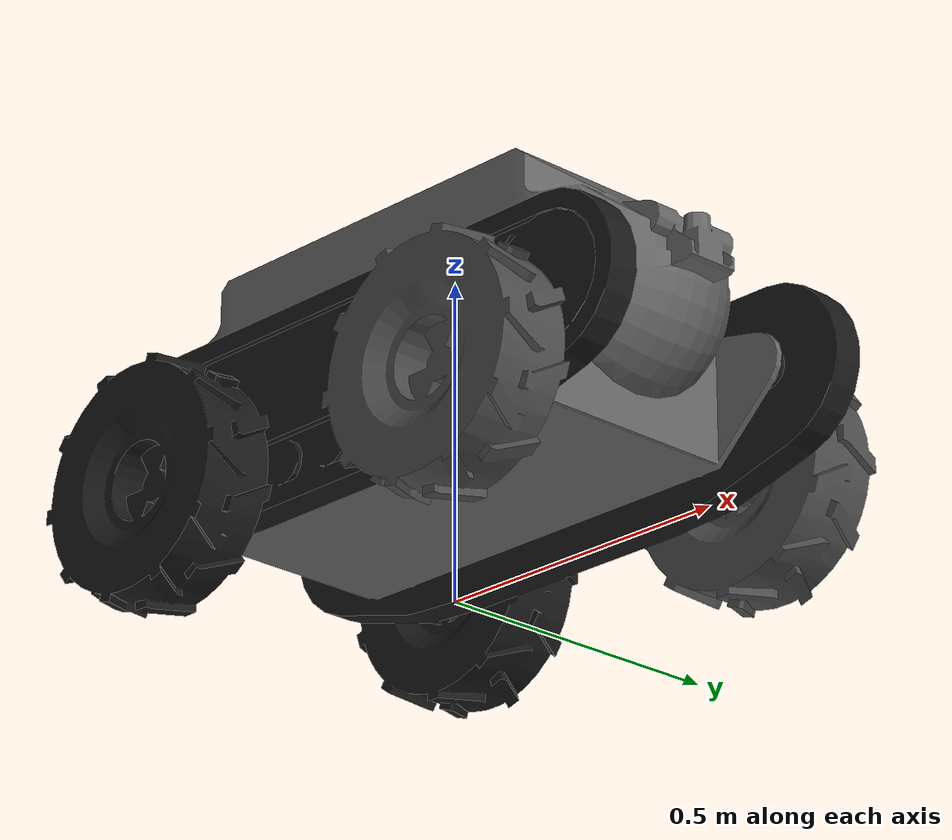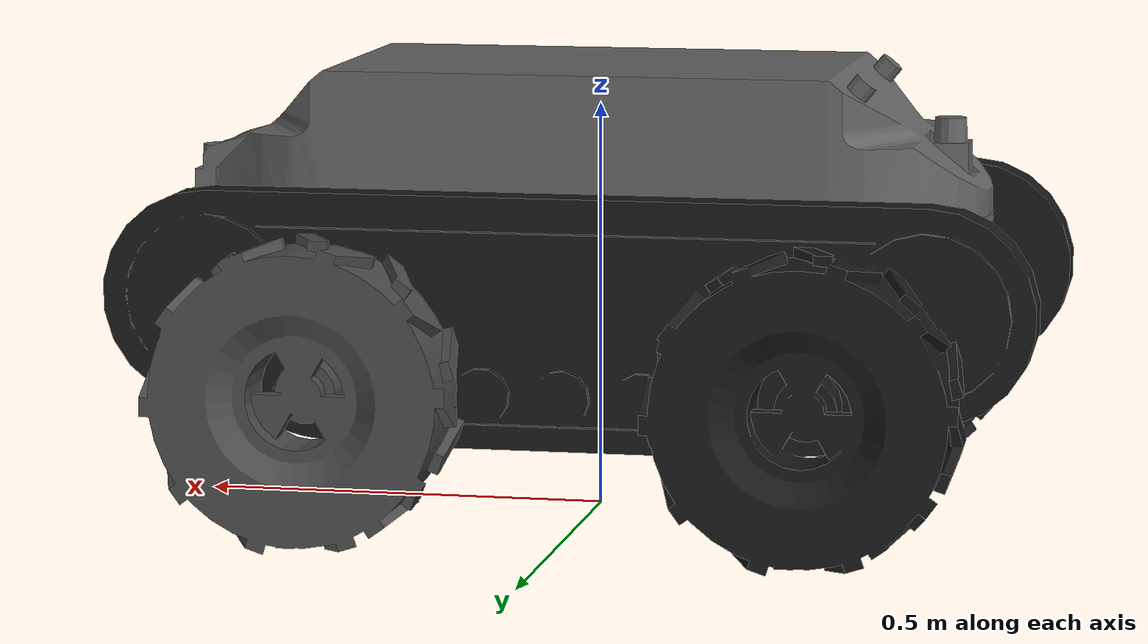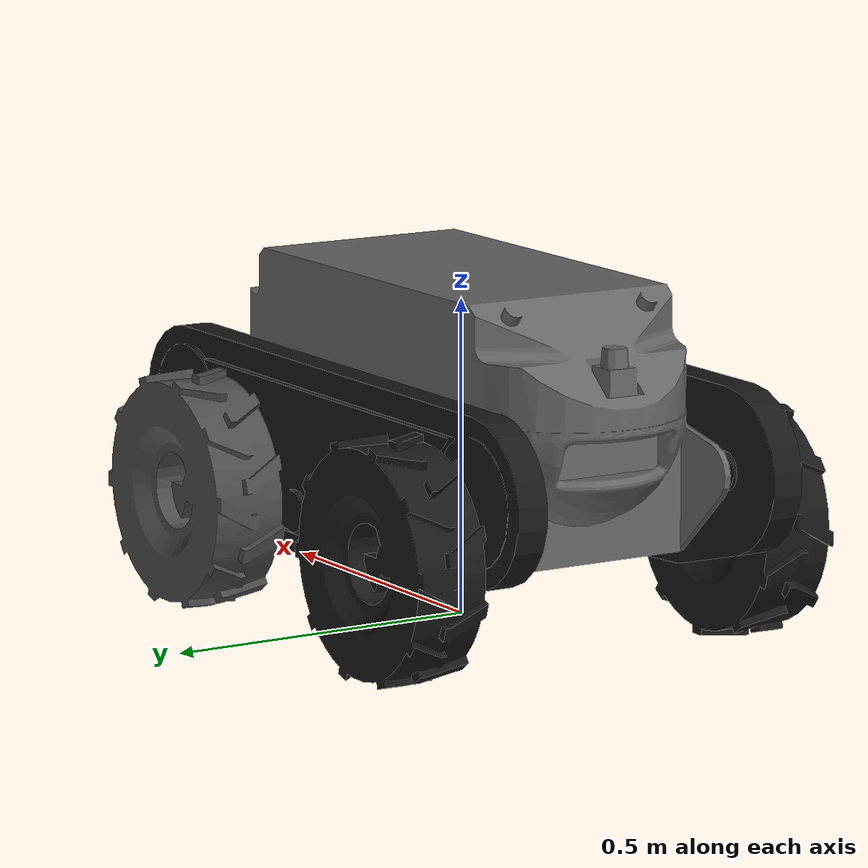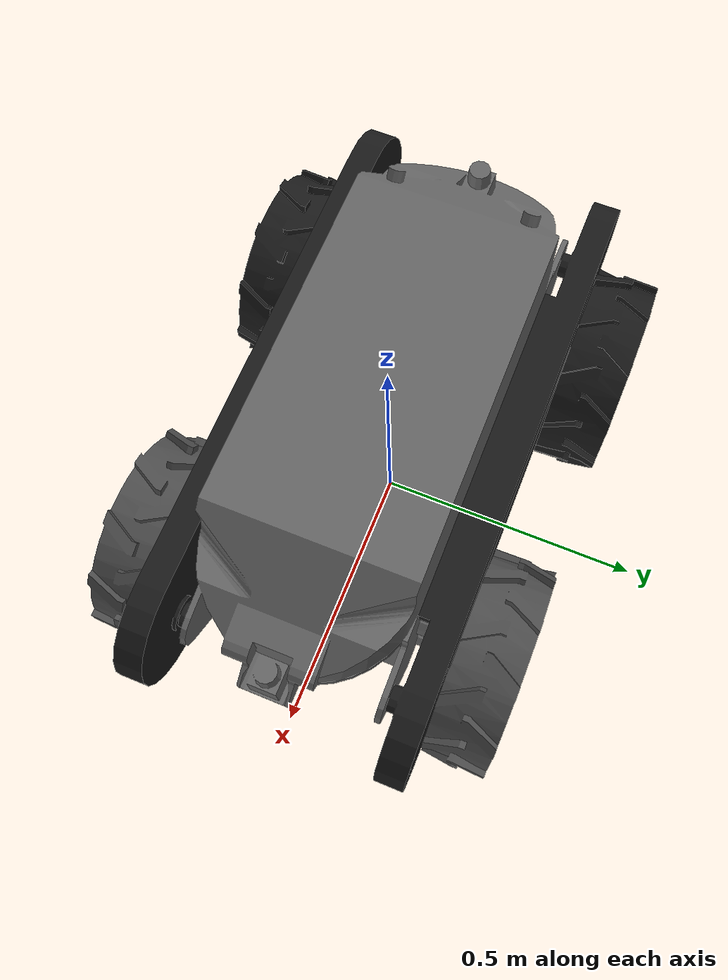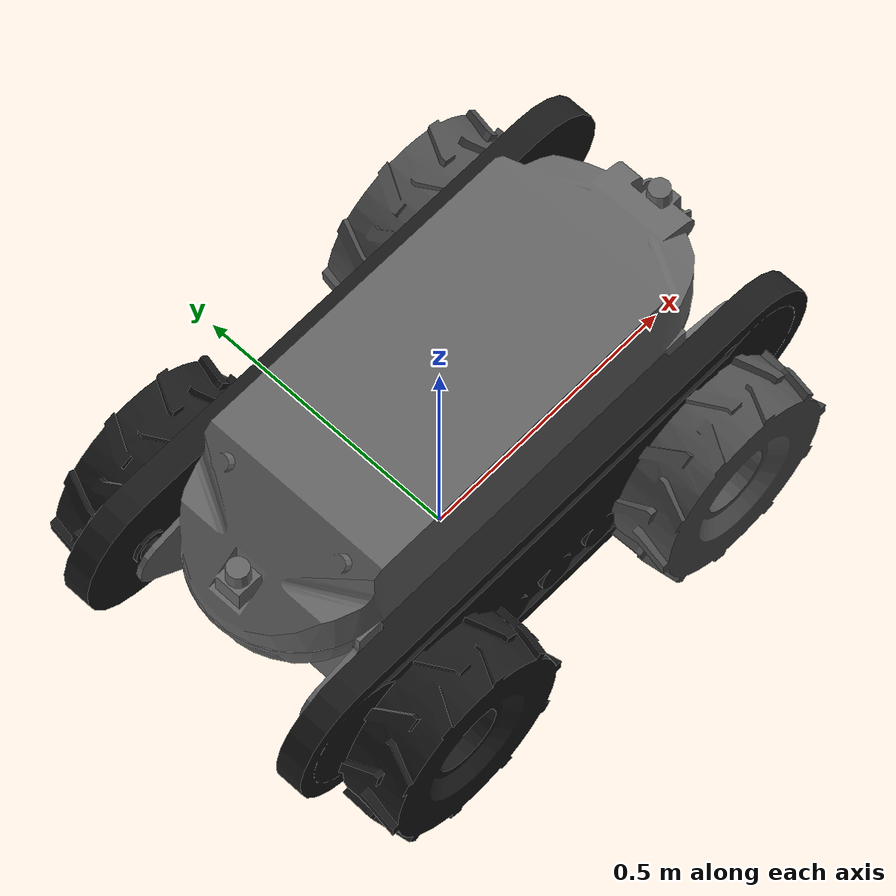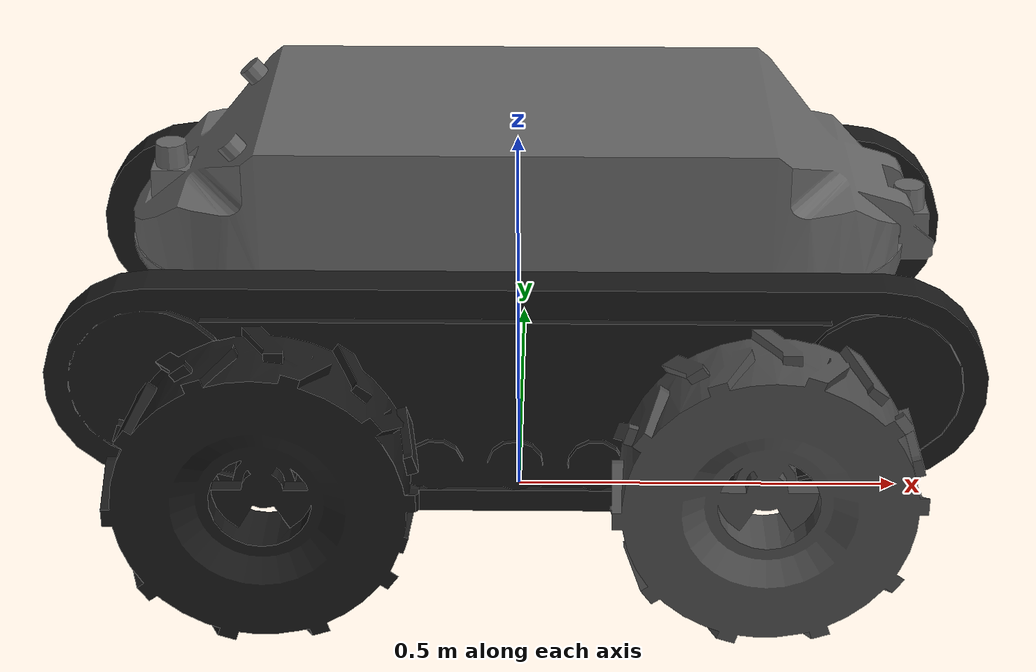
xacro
<?xml version="1.0"?>
<robot name="gball" xmlns:xacro="http://www.ros.org/wiki/xacro">

  <!-- Import all Gazebo-customization elements, including Gazebo colors -->
  <xacro:include filename="$(find guardian_description)/urdf/guardian.gazebo" />

  <!-- Robot mechanical and motor parameters -->
  <xacro:property name="PI" value="3.1415926535897931"/>
  <xacro:property name="wheel_offset_x" value="0.300" />    <!-- x,y,z in base_footprint CS -->
  <xacro:property name="wheel_offset_y" value="0.265" />
  <xacro:property name="wheel_offset_z" value="0.0" />
  <xacro:property name="wheel_joint_damping" value="0.0" />
  <xacro:property name="wheel_joint_friction" value="0.0" />

  <xacro:property name="wheel_joint_effort_limit" value="200.0" />
  <xacro:property name="wheel_joint_velocity_limit" value="200.0" />
  <xacro:property name="wheel_mechanical_reduction" value="1.0" />

  <xacro:property name="ptz_joint_effort_limit" value="100.0" />
  <xacro:property name="ptz_joint_velocity_limit" value="100.0"/>
  <xacro:property name="ptz_joint_friction" value="0.1" />
  <xacro:property name="ptz_joint_damping" value="0.1" />
  <xacro:property name="ptz_mechanical_reduction" value="1.0" />

  <xacro:property name="simple_wheel_length" value="0.115" />
  <xacro:property name="simple_wheel_radius" value="0.185" />
  <xacro:property name="wheel_origin_y" value="0.0415" />
  <xacro:property name="wheel_offset_y_a" value="0.306" />

  <!-- Used for fixing robot to Gazebo 'base_link' -->

  <!-- BASE FOOTPRINT -->
  <!-- base_footprint is a fictitious link(frame) that is on the ground right below base_link origin,
             navigation stack depends on this frame -->
  <link name="base_footprint">
      <visual>
          <origin xyz="0 0 0" rpy="0 0 0" />
          <geometry>
             <box size="0.001 0.001 0.001" />
          </geometry>
      </visual>

  </link>

  <joint name="base_footprint_joint" type="fixed">
     <!--NB: While you would think this would make it go up, it is oddly reversed.
      This moves the joint to 0,0,0 where we want it for rviz, etc. -->
     <!-- origin xyz="0 0 0.130" rpy="0 0 0" / -->
     <origin xyz="0 0 0.18" rpy="0 0 0" />
     <parent link="base_footprint"/>
     <child link="base_link" />
  </joint>

  <!-- BASE_LINK (DarkGrey) -->
  <link name="base_link">
    <inertial>
      <mass value="33.50" />
      <origin xyz="0 0 0" />
      <inertia  ixx="3.737" ixy="0.008"  ixz="-0.144"  iyy="8.311"  iyz="-0.004"  izz="8.893" />
    </inertial>
    <visual>
       <origin xyz="0 0 0" rpy="0 0 0" />
       <geometry>
	     <mesh filename="package://guardian_description/meshes/chassis/two_lasers/guardian2lasers.stl"/>
       </geometry>
		<material name="DarkGrey">
			<color rgba="0.4 0.4 0.4 1.0" />
		</material>
    </visual>
    <collision>
       <origin xyz="0 0 0.08" rpy="0 0 0 " />
       <geometry>
		  <!-- includes tracks, making it just tall enough not to hit the laser beams -->
		  <box size = "1.127 0.497 0.25"/>
       </geometry>
    </collision>
  </link>

<!-- ################# TRACKS ################# -->
  <!-- RIGHT TRACK (BLACK) -->
  <link name="right_track">
    <inertial>
      <mass value="1.250" />
      <origin xyz="0 0 0" />
      <inertia  ixx="0.0109375" ixy="0.0"  ixz="0.0"  iyy="0.021125"  iyz="0.0"  izz="0.0109375" />
    </inertial>
    <visual>
      <origin xyz="0 0 0" rpy="0 0 0" />
      <geometry>
	 	 <mesh filename="package://guardian_description/meshes/others/v5/trackV5_l.stl"/>
      </geometry>
	  <material name="black">
  		 <color rgba="0.1 0.1 0.1 1"/>
      </material>
    </visual>
  </link>

  <joint name="joint_right_track" type="fixed">
    <parent link="base_link"/>
    <child link="right_track"/>
    <origin xyz="0.0 0.0 0.0" rpy="0 0 0" />
  </joint>

  <!-- LEFT TRACK (BLACK) -->
  <link name="left_track">
    <inertial>
      <mass value="1.250" />
      <origin xyz="0 0 0" />
      <inertia  ixx="0.0109375" ixy="0.0"  ixz="0.0"  iyy="0.021125"  iyz="0.0"  izz="0.0109375" />
    </inertial>
    <visual>
       <origin xyz="0 0 0" rpy="0 0 0" />
       <geometry>
	 	  <mesh filename="package://guardian_description/meshes/others/v5/trackV5_l.stl"/>
       </geometry>
	   <material name="black"/>
    </visual>
  </link>

  <joint name="joint_left_track" type="fixed">
    <parent link="base_link"/>
    <child link="left_track"/>
    <origin xyz="0.0 0.0 0.0" rpy="0 0 3.1415926535" />
  </joint>

<!-- ################# WHEELS ################# -->
  <!-- BACK LEFT WHEEL (GREY) -->
  <link name="back_left_wheel">
    <inertial>
      <mass value="4.5" />
      <origin xyz="0 0 0" rpy="0 0 ${PI}"/>
      <inertia  ixx="0.059" ixy="0.0"  ixz="0.0"  iyy="0.055"  iyz="0.0"  izz="0.059" />
    </inertial>
    <visual>
       <origin xyz="0 -${wheel_origin_y} 0" rpy="0 0 ${PI}" />
       <geometry>
	 	  <mesh filename="package://guardian_description/meshes/wheel.stl"/>
       </geometry>
	   <material name="black">
		  <color rgba="0.1 0.1 0.1 1"/>
       </material>
    </visual>
    <collision>
       <origin xyz="0 0 0" rpy="${PI/2} 0 ${PI}" />
       <geometry>
          <cylinder length="${simple_wheel_length}" radius="${simple_wheel_radius}"/>
       </geometry>
       <material name="black"/>
    </collision>
  </link>

  <joint name="joint_back_left_wheel" type="continuous">
    <parent link="base_link"/>
    <child link="back_left_wheel"/>
    <origin xyz="-${wheel_offset_x} ${wheel_offset_y_a} 0" rpy="0 0 0" />
    <axis xyz="0 1 0" rpy="0 0 0" />
    <limit effort="${wheel_joint_effort_limit}" velocity="${wheel_joint_velocity_limit}"/>
    <joint_properties damping="${wheel_joint_damping}" friction="{wheel_joint_friction}"/>
  </joint>

  <transmission name="joint_blw_trans">
	 <type>transmission_interface/SimpleTransmission</type>
     <joint name="joint_back_left_wheel" />
     <actuator name="joint_blw_motor">
	    <hardwareInterface>EffortJointInterface</hardwareInterface>
        <mechanicalReduction>${wheel_mechanical_reduction}</mechanicalReduction>
     </actuator>
  </transmission>

  <!-- BACK RIGHT WHEEL (BLACK) -->
  <link name="back_right_wheel">
    <inertial>
      <mass value="4.5" />
      <origin xyz="0 0 0" rpy="0 0 0"/>
      <inertia  ixx="0.059" ixy="0.0"  ixz="0.0"  iyy="0.055"  iyz="0.0"  izz="0.059" />
    </inertial>
    <visual>
       <origin xyz="0 ${wheel_origin_y} 0" rpy="0 0 0" />
       <geometry>
         <mesh filename="package://guardian_description/meshes/wheel.stl"/>
       </geometry>
	   <material name="black"/>
    </visual>
    <collision>
       <origin xyz="0 0 0" rpy="${PI/2} 0 0" />
       <geometry>
         <cylinder length="${simple_wheel_length}" radius="${simple_wheel_radius}"/>
       </geometry>
       <material name="black"/>
    </collision>
  </link>

  <joint name="joint_back_right_wheel" type="continuous">
    <parent link="base_link"/>
    <child link="back_right_wheel"/>
    <origin xyz="-${wheel_offset_x} -${wheel_offset_y_a} 0" rpy="0 0 0" />
    <axis xyz="0 1 0" rpy="0 0 0" />
    <limit effort="${wheel_joint_effort_limit}" velocity="${wheel_joint_velocity_limit}"/>
    <joint_properties damping="${wheel_joint_damping}" friction="{wheel_joint_friction}"/>
  </joint>

  <transmission name="joint_brw_trans">
    <type>transmission_interface/SimpleTransmission</type>
    <joint name="joint_back_right_wheel" />
    <actuator name="joint_brw_motor">
	   <hardwareInterface>EffortJointInterface</hardwareInterface>
       <mechanicalReduction>${wheel_mechanical_reduction}</mechanicalReduction>
    </actuator>
  </transmission>

  <!-- FRONT LEFT WHEEL (GREY) -->
  <link name="front_left_wheel">
    <inertial>
      <mass value="4.5" />
      <origin xyz="0 0 0" rpy="0 0 3.1416"/>
      <inertia  ixx="0.059" ixy="0.0"  ixz="0.0"  iyy="0.055"  iyz="0.0"  izz="0.059" />
    </inertial>

    <visual>
       <origin xyz="0 -${wheel_origin_y} 0" rpy="0 0 ${PI}" />
       <geometry>
         <mesh filename="package://guardian_description/meshes/wheel.stl"/>
       </geometry>
	   <material name="grey">
		  <color rgba="0.3 0.3 0.3 1"/>
       </material>
    </visual>
    <collision>
       <origin xyz="0 0 0" rpy="${PI/2} 0 ${PI}" />
       <geometry>
         <cylinder length="${simple_wheel_length}" radius="${simple_wheel_radius}"/>
       </geometry>
    </collision>
  </link>

  <joint name="joint_front_left_wheel" type="continuous">
    <parent link="base_link"/>
    <child link="front_left_wheel"/>
    <origin xyz="${wheel_offset_x} ${wheel_offset_y_a} 0" rpy="0 0 0" />
    <axis xyz="0 1 0" rpy="0 0 0" />
    <limit effort="${wheel_joint_effort_limit}" velocity="${wheel_joint_velocity_limit}"/>
    <joint_properties damping="${wheel_joint_damping}" friction="{wheel_joint_friction}"/>
  </joint>

  <transmission name="joint_flw_trans">
	 <type>transmission_interface/SimpleTransmission</type>
     <joint name="joint_front_left_wheel" />
     <actuator name="joint_flw_motor">
	   <hardwareInterface>EffortJointInterface</hardwareInterface>
       <mechanicalReduction>${wheel_mechanical_reduction}</mechanicalReduction>
     </actuator>
  </transmission>

  <!-- FRONT RIGHT WHEEL (GREY) -->
  <link name="front_right_wheel">
    <inertial>
      <mass value="4.5" />
      <origin xyz="0 0 0" rpy="0 0 0"/>
      <inertia  ixx="0.059" ixy="0.0"  ixz="0.0"  iyy="0.055"  iyz="0.0"  izz="0.059" />
    </inertial>
    <visual>
       <origin xyz="0 ${wheel_origin_y} 0" rpy="0 0 0" />
       <geometry>
         <mesh filename="package://guardian_description/meshes/wheel.stl"/>
       </geometry>
	   <material name="grey"/>
    </visual>
    <collision>
       <origin xyz="0 0 0" rpy="${PI/2} 0 0" />
       <geometry>
         <cylinder length="${simple_wheel_length}" radius="${simple_wheel_radius}"/>
       </geometry>
    </collision>
  </link>

  <joint name="joint_front_right_wheel" type="continuous">
    <parent link="base_link"/>
    <child link="front_right_wheel"/>
    <origin xyz="${wheel_offset_x} -${wheel_offset_y_a} 0" rpy="0 0 0" /> <!-- ${wheel_offset_x} -->
    <axis xyz="0 1 0" rpy="0 0 0" />
    <limit effort="${wheel_joint_effort_limit}" velocity="${wheel_joint_velocity_limit}"/>
    <joint_properties damping="${wheel_joint_damping}" friction="{wheel_joint_friction}"/>
  </joint>

  <transmission name="joint_frw_trans">
	 <type>transmission_interface/SimpleTransmission</type>
     <joint name="joint_front_right_wheel" />
     <actuator name="joint_frw_motor">
	   <hardwareInterface>EffortJointInterface</hardwareInterface>
       <mechanicalReduction>${wheel_mechanical_reduction}</mechanicalReduction>
     </actuator>
  </transmission>

<!-- ################# SENSORS ################# -->

  <!-- FRONT - TILT LASER - URG-04LX -->
  <joint name="hokuyo_tilt_laser_joint" type="revolute">
     <axis xyz="0 1 0" />
     <!--origin xyz="0.180 0.0 0.270"/-->
     <origin xyz="0.48856 0 0.24" rpy="0 0 0" />
     <parent link="base_link"/>
     <child link="hokuyo_tilt_laser_link"/>
     <limit effort="${ptz_joint_effort_limit}" velocity="${ptz_joint_velocity_limit}" lower="-1.5708" upper="1.5708"/>
     <joint_properties damping="${ptz_joint_damping}" friction="{ptz_joint_friction}"/>
  </joint>

  <link name="hokuyo_tilt_laser_link">
     <inertial>
       <mass value="0.1" />
       <origin xyz="0 0 0" rpy="0 0 0" />
       <inertia ixx="0.1" ixy="0" ixz="0" iyy="0.1" iyz="0" izz="0.1" />
    </inertial>
          <!--mesh filename="package://pr2_description/meshes/tilting_laser_v0/tilting_hokuyo.dae" /-->

  </link>

  <transmission name="joint_tilt_laser_trans">
   <type>transmission_interface/SimpleTransmission</type>
     <joint name="hokuyo_tilt_laser_joint" />
     <actuator name="tilt_laser_motor">
     <hardwareInterface>EffortJointInterface</hardwareInterface>
       <mechanicalReduction>${ptz_mechanical_reduction}</mechanicalReduction>
     </actuator>
  </transmission>

  <!-- HOKUYO SENSOR -->
  <joint name="hokuyo_base_laser_joint" type="fixed">
     <axis xyz="0 1 0" />
     <origin xyz="-0.43235 0 0.3" rpy="0 0 ${PI}" />
     <parent link="base_link"/>
     <child link="hokuyo_base_laser_link"/>
  </joint>

  <!-- Hokuyo Laser -->
  <link name="hokuyo_base_laser_link">

    <inertial>
      <mass value="1e-5" />
      <origin xyz="0 0 0" rpy="0 0 0"/>
      <inertia ixx="1e-6" ixy="0" ixz="0" iyy="1e-6" iyz="0" izz="1e-6" />
    </inertial>
  </link>

  <!-- IMU SENSOR -->
  <joint name="imu_joint" type="fixed">
      <axis xyz="1 0 0"/>
      <origin xyz="0 0 0.2825"/>
      <parent link="base_link"/>
      <child link="imu_link"/>
  </joint>

  <link name="imu_link">
      <inertial>
        <mass value="0.001"/>
        <origin rpy="0 0 0" xyz="0 0 0"/>
        <inertia ixx="0.0001" ixy="0" ixz="0" iyy="0.000001" iyz="0" izz="0.0001"/>
      </inertial>
      <visual>
        <origin rpy="0 0 0" xyz="0 0 0"/>
        <geometry>
          <box size="0.001 0.001 0.001"/>
        </geometry>
      </visual>
      <collision>
        <origin rpy="0 0 0" xyz="0 0 0"/>
        <geometry>
          <box size=".001 .001 .001"/>
        </geometry>
      </collision>
  </link>
</robot>
